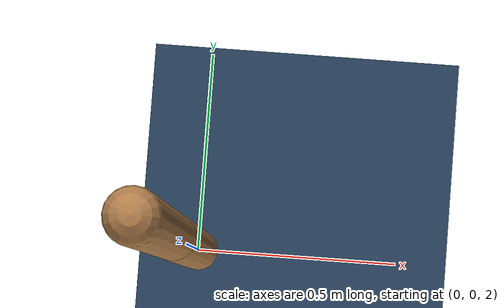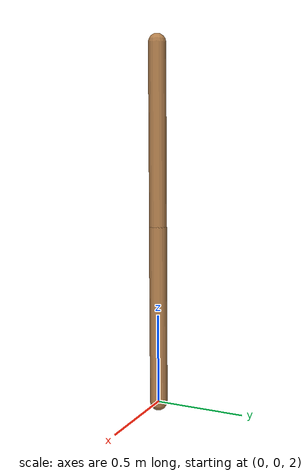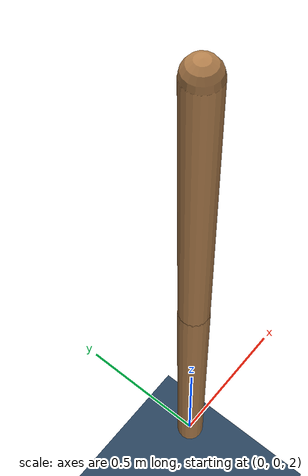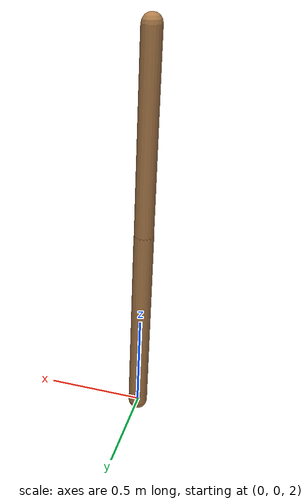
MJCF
<mujoco model="acrobot">
    <visual>
        <headlight ambient=".4 .4 .4" diffuse=".8 .8 .8" specular="0.1 0.1 0.1"/>
        <map znear=".01"/>
        <quality shadowsize="2048"/>
    </visual>
    <asset>
        <texture name="skybox" type="skybox" builtin="gradient" rgb1=".4 .6 .8" rgb2="0 0 0"
                width="800" height="800" mark="random" markrgb="1 1 1"/>
    </asset>
    <asset>
        <texture name="grid" type="2d" builtin="checker" rgb1=".1 .2 .3" rgb2=".2 .3 .4" width="300" height="300" mark="edge" markrgb=".2 .3 .4"/>
        <material name="grid" texture="grid" texrepeat="1 1" texuniform="true" reflectance=".2"/>
        <material name="self" rgba=".7 .5 .3 1"/>
        <material name="self_default" rgba=".7 .5 .3 1"/>
        <material name="self_highlight" rgba="0 .5 .3 1"/>
        <material name="effector" rgba=".7 .4 .2 1"/>
        <material name="effector_default" rgba=".7 .4 .2 1"/>
        <material name="effector_highlight" rgba="0 .5 .3 1"/>
        <material name="decoration" rgba=".3 .5 .7 1"/>
        <material name="eye" rgba="0 .2 1 1"/>
        <material name="target" rgba=".6 .3 .3 1"/>
        <material name="target_default" rgba=".6 .3 .3 1"/>
        <material name="target_highlight" rgba=".6 .3 .3 .4"/>
        <material name="site" rgba=".5 .5 .5 .3"/>
    </asset>
  <default>
    <joint damping="0.0" limited="true"/>
    <geom type="capsule" mass="1"/>
  </default>

  <option timestep="0.05" integrator="RK4">
    <flag contact="disable" energy="enable"/>
  </option>

  <worldbody>
    <light name="light" pos="0 0 6"/>
    <geom name="floor" size="3 3 .2" type="plane" material="grid"/>
    <site name="target" type="sphere" pos="0 0 4" size="0.2" material="target" group="3"/>
    <camera name="fixed" pos="0 -6 2" zaxis="0 -1 0"/>
    <body name="upper_arm" pos="0 0 2">
      <joint name="shoulder" type="hinge" limited="false" range="-45 45" axis="0 1 0"/>
      <geom name="upper_arm" fromto="0 0 0 0 0 1" size="0.05" material="self"/>
      <inertial pos="0 0 0" mass="1" diaginertia="0.33 0.33 0.01"/>
      <body name="lower_arm" pos="0 0 1">
        <joint name="elbow" type="hinge" limited="true" range="-90 90" axis="0 1 0"/>
        <geom name="lower_arm" fromto="0 0 0 0 0 1" size="0.049" material="self"/>
        <inertial pos="0 0 0" mass="1" diaginertia="0.33 0.33 0.01"/>
      </body>
    </body>
  </worldbody>

   <actuator>
    <motor name="elbow" joint="elbow" gear="1" ctrllimited="false" ctrlrange="-1000 1000"/>
  </actuator>
</mujoco>
